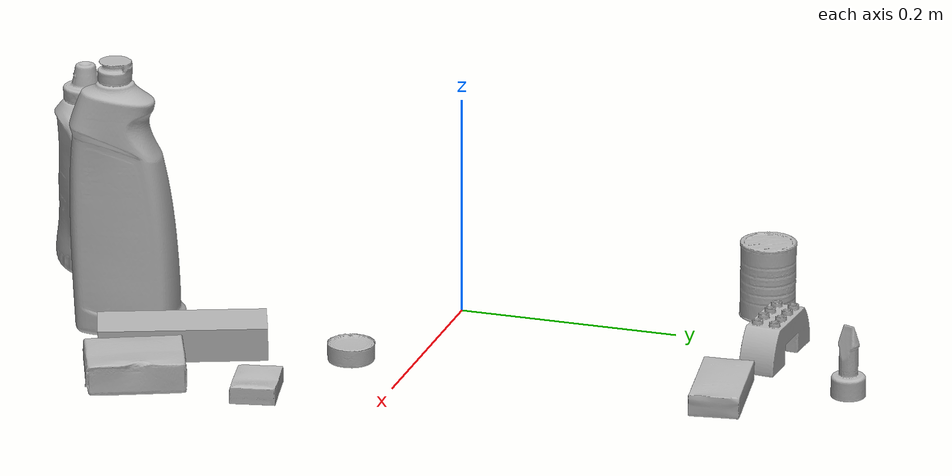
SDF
<sdf version="1.4">
  <world name="default">
    <light name="light1" type="point">
      <pose>0 0 1 0 0 0</pose>
      <diffuse>3 3 3 1</diffuse>
      <specular>3 3 3 1</specular>
    </light>
    <light name="light2" type="point">
      <pose>0 0.5 2 0 0 0</pose>
      <diffuse>1 1 1 1</diffuse>
      <specular>1 1 1 1</specular>
    </light>
    <light name="light3" type="point">
      <pose>0 0.5 2 0 0 0</pose>
      <diffuse>3 3 3 1</diffuse>
      <specular>3 3 3 1</specular>
    </light>
    <scene>
      <ambient>0.7 0.7 0.7</ambient>
    </scene>
    <model name="bottle1">
      <link name="link_bottle1">
        <collision name="default">
          <geometry>
            <mesh>
              <uri>model://mustard_bottle/collision_meshes/collision.obj</uri>
              <scale>1.0 1.0 1.0</scale>
            </mesh>
          </geometry>
          <surface>
            <friction>
              <ode>
                <mu>0.5</mu>
                <mu2>0.5</mu2>
              </ode>
            </friction>
          <contact>
        <ode>
            <max_vel>0</max_vel>
            <min_depth>0.0001</min_depth>
            <kp>1e8</kp>
        </ode>
    </contact></surface>
        </collision>
        <visual name="default">
          <geometry>
            <mesh>
              <uri>model://mustard_bottle/visual_meshes/visual.dae</uri>
              <scale>1.0 1.0 1.0</scale>
            </mesh>
          </geometry>
        </visual>
        <inertial>
          <mass>0.8303800225257874</mass>
          <pose>0.0005032453336752951 -0.00015647402324248105 -0.017475798726081848 0.0004182333015560062 0.0009465791044325989 0.02485372608929167</pose>
          <inertia>
            <ixx>0.0023058522</ixx>
            <iyy>0.0020231898</iyy>
            <izz>0.00060770847</izz>
            <ixy>0</ixy>
            <ixz>0</ixz>
            <iyz>0</iyz>
          </inertia>
        </inertial>
      </link>
      <pose>-0.01107674092054367 -0.3629668354988098 0.09615200757980347 1.4523709813185583e-05 1.6044245780475346e-05 2.0671595083105707</pose>
    </model>
    <model name="bottle2">
      <link name="link_bottle2">
        <collision name="default">
          <geometry>
            <mesh>
              <uri>model://bleach_cleanser/collision_meshes/collision.obj</uri>
              <scale>1.0 1.0 1.0</scale>
            </mesh>
          </geometry>
          <surface>
            <friction>
              <ode>
                <mu>0.5</mu>
                <mu2>0.5</mu2>
              </ode>
            </friction>
          <contact>
        <ode>
            <max_vel>0</max_vel>
            <min_depth>0.0001</min_depth>
            <kp>1e8</kp>
        </ode>
    </contact></surface>
        </collision>
        <visual name="default">
          <geometry>
            <mesh>
              <uri>model://bleach_cleanser/visual_meshes/visual.dae</uri>
              <scale>1.0 1.0 1.0</scale>
            </mesh>
          </geometry>
        </visual>
        <inertial>
          <mass>1.2443958520889282</mass>
          <pose>0.00012193184375064448 0.0037838828284293413 -0.02442161552608013 -0.07381670616387152 0.00042011519151103325 -0.006875073427896589</pose>
          <inertia>
            <ixx>0.006056655</ixx>
            <iyy>0.005643917</iyy>
            <izz>0.0010355307</izz>
            <ixy>0</ixy>
            <ixz>0</ixz>
            <iyz>0</iyz>
          </inertia>
        </inertial>
      </link>
      <pose>0.1300409883260727 -0.27055880427360535 0.12578412890434265 -0.0002002425944407657 1.6188376043729804e-05 -2.979686257506417</pose>
    </model>
    <model name="toy1">
      <link name="link_toy1">
        <collision name="default">
          <geometry>
            <mesh>
              <uri>model://e_lego_duplo/collision_meshes/collision.obj</uri>
              <scale>1.0 1.0 1.0</scale>
            </mesh>
          </geometry>
          <surface>
            <friction>
              <ode>
                <mu>0.5</mu>
                <mu2>0.5</mu2>
              </ode>
            </friction>
          <contact>
        <ode>
            <max_vel>0</max_vel>
            <min_depth>0.0001</min_depth>
            <kp>1e8</kp>
        </ode>
    </contact></surface>
        </collision>
        <visual name="default">
          <geometry>
            <mesh>
              <uri>model://e_lego_duplo/visual_meshes/visual.dae</uri>
              <scale>1.0 1.0 1.0</scale>
            </mesh>
          </geometry>
        </visual>
        <inertial>
          <mass>0.09737597405910492</mass>
          <pose>0.00032560466206632555 0.00023485408746637404 0.00195214559789747 -0.022567666099209266 -6.826041083389806e-05 -0.0076251575404409295</pose>
          <inertia>
            <ixx>2.0306108e-05</ixx>
            <iyy>8.3341496e-05</iyy>
            <izz>8.115786e-05</izz>
            <ixy>0</ixy>
            <ixz>0</ixz>
            <iyz>0</iyz>
          </inertia>
        </inertial>
      </link>
      <pose>0.02479526773095131 0.29779648780822754 0.02180899865925312 2.1572977480323765e-07 -2.0159263362026295e-07 -0.08328549307052352</pose>
    </model>
    <model name="toy2">
      <link name="link_toy2">
        <collision name="default">
          <geometry>
            <mesh>
              <uri>model://e_toy_airplane/collision_meshes/collision.obj</uri>
              <scale>1.0 1.0 1.0</scale>
            </mesh>
          </geometry>
          <surface>
            <friction>
              <ode>
                <mu>0.5</mu>
                <mu2>0.5</mu2>
              </ode>
            </friction>
          <contact>
        <ode>
            <max_vel>0</max_vel>
            <min_depth>0.0001</min_depth>
            <kp>1e8</kp>
        </ode>
    </contact></surface>
        </collision>
        <visual name="default">
          <geometry>
            <mesh>
              <uri>model://e_toy_airplane/visual_meshes/visual.dae</uri>
              <scale>1.0 1.0 1.0</scale>
            </mesh>
          </geometry>
        </visual>
        <inertial>
          <mass>0.02463557943701744</mass>
          <pose>0.0001174048229586333 -2.2482929125544615e-05 -0.011187203228473663 0.005518471763615081 0.009228316378097946 0.15041226495803456</pose>
          <inertia>
            <ixx>7.519061e-06</ixx>
            <iyy>7.442144e-06</iyy>
            <izz>2.2597733e-06</izz>
            <ixy>0</ixy>
            <ixz>0</ixz>
            <iyz>0</iyz>
          </inertia>
        </inertial>
      </link>
      <pose>0.09380804747343063 0.3831433653831482 0.033212147653102875 6.321400043205726e-05 -9.741921032498537e-05 -0.5597481783200251</pose>
    </model>
    <model name="can1">
      <link name="link_can1">
        <collision name="default">
          <geometry>
            <mesh>
              <uri>model://master_chef_can/collision_meshes/collision.obj</uri>
              <scale>0.5 0.5 0.5</scale>
            </mesh>
          </geometry>
          <surface>
            <friction>
              <ode>
                <mu>0.5</mu>
                <mu2>0.5</mu2>
              </ode>
            </friction>
          <contact>
        <ode>
            <max_vel>0</max_vel>
            <min_depth>0.0001</min_depth>
            <kp>1e8</kp>
        </ode>
    </contact></surface>
        </collision>
        <visual name="default">
          <geometry>
            <mesh>
              <uri>model://master_chef_can/visual_meshes/visual.dae</uri>
              <scale>0.5 0.5 0.5</scale>
            </mesh>
          </geometry>
        </visual>
        <inertial>
          <mass>0.10604178160429001</mass>
          <pose>-4.6619643399026245e-05 1.3926852204804163e-07 -5.079910988570191e-05 -0.0017995162277820833 0.0006479167566960504 -0.6102671332965355</pose>
          <inertia>
            <ixx>6.2239335e-05</ixx>
            <iyy>6.178125e-05</iyy>
            <izz>3.439199e-05</izz>
            <ixy>0</ixy>
            <ixz>0</ixz>
            <iyz>0</iyz>
          </inertia>
        </inertial>
      </link>
      <pose>-0.07368342578411102 0.26441335678100586 0.03530197963118553 -1.4620182110869194e-06 -1.2615751991412657e-06 -0.4627390759191199</pose>
    </model>
    <model name="can2">
      <link name="link_can2">
        <collision name="default">
          <geometry>
            <mesh>
              <uri>model://tuna_fish_can/collision_meshes/collision.obj</uri>
              <scale>0.5 0.5 0.5</scale>
            </mesh>
          </geometry>
          <surface>
            <friction>
              <ode>
                <mu>0.5</mu>
                <mu2>0.5</mu2>
              </ode>
            </friction>
          <contact>
        <ode>
            <max_vel>0</max_vel>
            <min_depth>0.0001</min_depth>
            <kp>1e8</kp>
        </ode>
    </contact></surface>
        </collision>
        <visual name="default">
          <geometry>
            <mesh>
              <uri>model://tuna_fish_can/visual_meshes/visual.dae</uri>
              <scale>0.5 0.5 0.5</scale>
            </mesh>
          </geometry>
        </visual>
        <inertial>
          <mass>0.028372401371598244</mass>
          <pose>-2.0361669157864526e-05 -7.256527169374749e-06 -0.0005269024986773729 -0.0017944775646394609 0.00017161727950706725 0.2405381123423382</pose>
          <inertia>
            <ixx>3.8359926e-06</ixx>
            <iyy>3.8200033e-06</iyy>
            <izz>6.5639315e-06</izz>
            <ixy>0</ixy>
            <ixz>0</ixz>
            <iyz>0</iyz>
          </inertia>
        </inertial>
      </link>
      <pose>0.1457461565732956 -0.05595637112855911 0.008520001545548439 -2.1417610133889864e-08 1.059279120953688e-08 2.3301150737476695</pose>
    </model>
    <model name="box1">
      <link name="link_box1">
        <collision name="default">
          <geometry>
            <mesh>
              <uri>model://jenga/collision_meshes/collision.obj</uri>
              <scale>1.0 1.0 1.0</scale>
            </mesh>
          </geometry>
          <surface>
            <friction>
              <ode>
                <mu>0.5</mu>
                <mu2>0.5</mu2>
              </ode>
            </friction>
          <contact>
        <ode>
            <max_vel>0</max_vel>
            <min_depth>0.0001</min_depth>
            <kp>1e8</kp>
        </ode>
    </contact></surface>
        </collision>
        <visual name="default">
          <geometry>
            <mesh>
              <uri>model://jenga/visual_meshes/visual.dae</uri>
              <scale>1.0 1.0 1.0</scale>
            </mesh>
          </geometry>
        </visual>
        <inertial>
          <mass>0.19909408688545227</mass>
          <pose>-2.502855807051674e-07 -0.0001025000965455547 -4.0923401684267446e-05 0.0 -7.34215461761844e-07 0.0</pose>
          <inertia>
            <ixx>5.509416e-05</ixx>
            <iyy>0.00037331658</iyy>
            <izz>0.00039854718</izz>
            <ixy>0</ixy>
            <ixz>0</ixz>
            <iyz>0</iyz>
          </inertia>
        </inertial>
      </link>
      <pose>0.17301075160503387 -0.20421184599399567 0.014999998733401299 1.9195181119789046e-08 -1.9401532614981897e-09 1.9333555571930439</pose>
    </model>
    <model name="box2">
      <link name="link_box2">
        <collision name="default">
          <geometry>
            <mesh>
              <uri>model://cracker_box/collision_meshes/collision.obj</uri>
              <scale>0.25 0.25 0.25</scale>
            </mesh>
          </geometry>
          <surface>
            <friction>
              <ode>
                <mu>0.5</mu>
                <mu2>0.5</mu2>
              </ode>
            </friction>
          <contact>
        <ode>
            <max_vel>0</max_vel>
            <min_depth>0.0001</min_depth>
            <kp>1e8</kp>
        </ode>
    </contact></surface>
        </collision>
        <visual name="default">
          <geometry>
            <mesh>
              <uri>model://cracker_box/visual_meshes/visual.dae</uri>
              <scale>0.25 0.25 0.25</scale>
            </mesh>
          </geometry>
        </visual>
        <inertial>
          <mass>0.04114612191915512</mass>
          <pose>0.00023660354781895876 6.358561950037256e-05 -0.0004257383698131889 -0.00031620780631524763 -0.011106488668660274 0.002546795934166242</pose>
          <inertia>
            <ixx>6.5410845e-06</ixx>
            <iyy>1.0800616e-05</iyy>
            <izz>1.5413472e-05</izz>
            <ixy>0</ixy>
            <ixz>0</ixz>
            <iyz>0</iyz>
          </inertia>
        </inertial>
      </link>
      <pose>0.24801146984100342 -0.10863890498876572 0.009120452217757702 -0.011788065175741444 -0.00736715951217353 -2.947344671958268</pose>
    </model>
    <model name="box3">
      <link name="link_box3">
        <collision name="default">
          <geometry>
            <mesh>
              <uri>model://gelatin_box/collision_meshes/collision.obj</uri>
              <scale>1.0 1.0 1.0</scale>
            </mesh>
          </geometry>
          <surface>
            <friction>
              <ode>
                <mu>0.5</mu>
                <mu2>0.5</mu2>
              </ode>
            </friction>
          <contact>
        <ode>
            <max_vel>0</max_vel>
            <min_depth>0.0001</min_depth>
            <kp>1e8</kp>
        </ode>
    </contact></surface>
        </collision>
        <visual name="default">
          <geometry>
            <mesh>
              <uri>model://gelatin_box/visual_meshes/visual.dae</uri>
              <scale>1.0 1.0 1.0</scale>
            </mesh>
          </geometry>
        </visual>
        <inertial>
          <mass>0.2244011014699936</mass>
          <pose>0.00043196187471039593 0.00011156871914863586 -0.00036403213744051754 -0.001050372105108351 -0.004755819619724262 0.01644056133527167</pose>
          <inertia>
            <ixx>0.00015840889</ixx>
            <iyy>0.000113150636</iyy>
            <izz>0.0002411336</izz>
            <ixy>0</ixy>
            <ixz>0</ixz>
            <iyz>0</iyz>
          </inertia>
        </inertial>
      </link>
      <pose>0.250202476978302 -0.22076889872550964 0.01516831386834383 0.005597385587683519 -0.007304461878146875 0.3922518983436476</pose>
    </model>
    <model name="box4">
      <link name="link_box4">
        <collision name="default">
          <geometry>
            <mesh>
              <uri>model://sugar_box/collision_meshes/collision.obj</uri>
              <scale>0.5 0.5 0.5</scale>
            </mesh>
          </geometry>
          <surface>
            <friction>
              <ode>
                <mu>0.5</mu>
                <mu2>0.5</mu2>
              </ode>
            </friction>
          <contact>
        <ode>
            <max_vel>0</max_vel>
            <min_depth>0.0001</min_depth>
            <kp>1e8</kp>
        </ode>
    </contact></surface>
        </collision>
        <visual name="default">
          <geometry>
            <mesh>
              <uri>model://sugar_box/visual_meshes/visual.dae</uri>
              <scale>0.5 0.5 0.5</scale>
            </mesh>
          </geometry>
        </visual>
        <inertial>
          <mass>0.11117161065340042</mass>
          <pose>0.0005171863595023751 1.9245546354795806e-05 -0.00018182402709499002 -0.0004046265622990317 0.001050663638873437 0.002615378555930204</pose>
          <inertia>
            <ixx>2.3156968e-05</ixx>
            <iyy>7.4848074e-05</iyy>
            <izz>8.960209e-05</izz>
            <ixy>0</ixy>
            <ixz>0</ixz>
            <iyz>0</iyz>
          </inertia>
        </inertial>
      </link>
      <pose>0.13610732555389404 0.2801041305065155 0.011399309150874615 0.0007745461654791121 -0.023433084241079916 -3.027721068505624</pose>
    </model>
  <physics type="ode">
      <max_contacts>50</max_contacts>
      <ode>
        <solver>
          <type>quick</type>
          <iters>75</iters>
        </solver>
        <constraints>
          <contact_max_correcting_vel>0</contact_max_correcting_vel>
          <contact_surface_layer>0</contact_surface_layer>
        </constraints>
      </ode>
    </physics></world>
</sdf>
